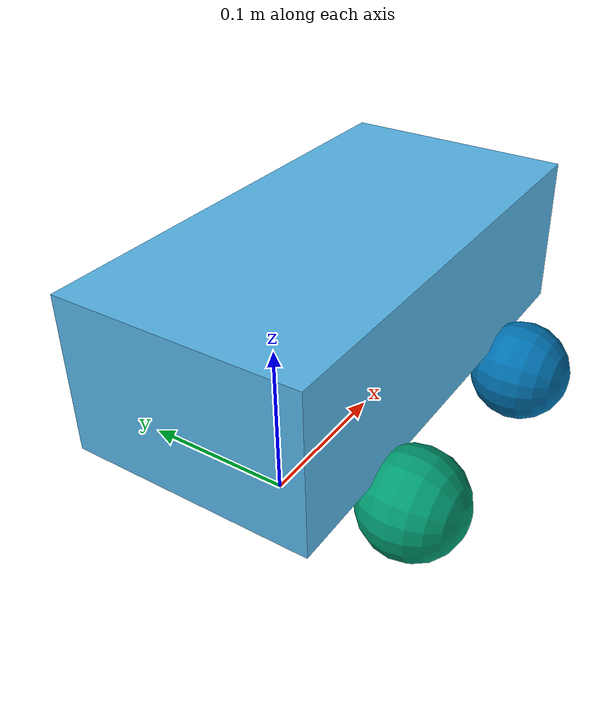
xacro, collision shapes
<?xml version="1.0"?>

<robot name="percheron" xmlns:xacro="http://www.ros.org/wiki/xacro">

    <xacro:include filename="$(find percheron_description)/urdf/percheron_gazebo.xacro"/>

    <link name="base_footprint" />

    <link name="base_link">
        <inertial>
            <origin xyz="0 0 0.04" rpy="0.0 0.25 0.3" />
            <mass value="8.2573504e-01"/>
            <inertia ixx="2.2124416e-02" ixy="-1.2294101e-04" ixz="3.4938785e-04"
                     iyy="2.1193702e-02" iyz="-5.0120904e-05"
                     izz="2.0064271e-02" />
        </inertial>
        <visual>
            <origin rpy="0 0 0" xyz="0.07 0 0.07"/>
            <geometry>
                <box size="0.3 0.153 0.10"></box>
            </geometry>
        </visual>
        <collision>
            <origin rpy="0 0 0" xyz="0.07 0 0.07"/>
            <geometry>
                <box size="0.3 0.153 0.10"></box>
            </geometry>
        </collision>
    </link>

    <joint name="base_joint" type="fixed">
        <parent link="base_footprint"/>
        <child link="base_link"/>
        <origin rpy="0 0 0" xyz="0 0 0.033"/>
    </joint>

    <link name="wheel_right_link">
        <inertial>
            <origin xyz="0 -0.014 0" rpy="0 0 0" />
            <mass value="0.0530086090966721" />
            <inertia ixx="1.88176298336665E-05" ixy="-4.8444933029987E-10" ixz="1.88163708851143E-08"
                     iyy="3.11510738647764E-05" iyz="-6.93560663069607E-11"
                     izz="1.8801969558182E-05" />
        </inertial>
        <visual>
            <origin rpy="1.57 0 0" xyz="0 0 0"/>
            <geometry>
                <mesh filename="package://percheron_description/meshes/wheel_right_link.STL"/>
            </geometry>
        </visual>
        <collision>
            <origin rpy="1.57 0 0" xyz="0 -0.015 0"/>
            <geometry>
                <sphere radius="0.033"/>
            </geometry>
        </collision>
    </link>

    <joint name="wheel_right_joint" type="continuous">
        <parent link="base_link"/>
        <child link="wheel_right_link"/>
        <axis xyz="0 1 0"/>
        <origin rpy="0 0 0" xyz="0 -0.077 0"/>
    </joint>

    <link name="wheel_left_link">
        <inertial>
            <origin xyz="0 -0.014 0" rpy="0 0 0" />
            <mass value="0.0530086090966721" />
            <inertia ixx="1.88176298336665E-05" ixy="-4.8444933029987E-10" ixz="1.88163708851143E-08"
                     iyy="3.11510738647764E-05" iyz="-6.93560663069607E-11"
                     izz="1.8801969558182E-05" />
        </inertial>
        <visual>
            <origin rpy="-1.57 0 0" xyz="0 0 0"/>
            <geometry>
                <mesh filename="package://percheron_description/meshes/wheel_left_link.STL"/>
            </geometry>
        </visual>
        <collision>
            <origin rpy="1.57 0 0" xyz="0 0.015 0"/>
            <geometry>
                <sphere radius="0.033"/>
            </geometry>
        </collision>
    </link>

    <joint name="wheel_left_joint" type="continuous">
        <parent link="base_link"/>
        <child link="wheel_left_link"/>
        <axis xyz="0 1 0"/>
        <origin rpy="0 0 0" xyz="0 0.077 0"/>
    </joint>

    <link name="caster_right_link">
        <inertial>
            <origin xyz="0 -0.014 0" rpy="0 0 0" />
            <mass value="0.0530086090966721" />
            <inertia ixx="1.88176298336665E-05" ixy="-4.8444933029987E-10" ixz="1.88163708851143E-08"
                     iyy="3.11510738647764E-05" iyz="-6.93560663069607E-11"
                     izz="1.8801969558182E-05" />
        </inertial>
        <visual>
            <origin rpy="1.57 0 0" xyz="0 0 0"/>
            <geometry>
                <mesh filename="package://percheron_description/meshes/wheel_right_link.STL"/>
            </geometry>
        </visual>
        <collision>
            <origin rpy="1.57 0 0" xyz="0 -0.015 0"/>
            <geometry>
                <sphere radius="0.033"/>
            </geometry>
        </collision>
    </link>

    <joint name="caster_right_joint" type="fixed">
        <parent link="base_link"/>
        <child link="caster_right_link"/>
        <origin rpy="0 0 0" xyz="0.15 -0.077 0"/>
    </joint>

    <link name="caster_left_link">
        <inertial>
            <origin xyz="0 -0.014 0" rpy="0 0 0" />
            <mass value="0.0530086090966721" />
            <inertia ixx="1.88176298336665E-05" ixy="-4.8444933029987E-10" ixz="1.88163708851143E-08"
                     iyy="3.11510738647764E-05" iyz="-6.93560663069607E-11"
                     izz="1.8801969558182E-05" />
        </inertial>
        <visual>
            <origin rpy="-1.57 0 0" xyz="0 0 0"/>
            <geometry>
                <mesh filename="package://percheron_description/meshes/wheel_left_link.STL"/>
            </geometry>
        </visual>
        <collision>
            <origin rpy="1.57 0 0" xyz="0 0.015 0"/>
            <geometry>
                <sphere radius="0.033"/>
            </geometry>
        </collision>
    </link>

    <joint name="caster_left_joint" type="fixed">
        <parent link="base_link"/>
        <child link="caster_left_link"/>
        <origin rpy="0 0 0" xyz="0.15 0.077 0"/>
    </joint>

</robot>
